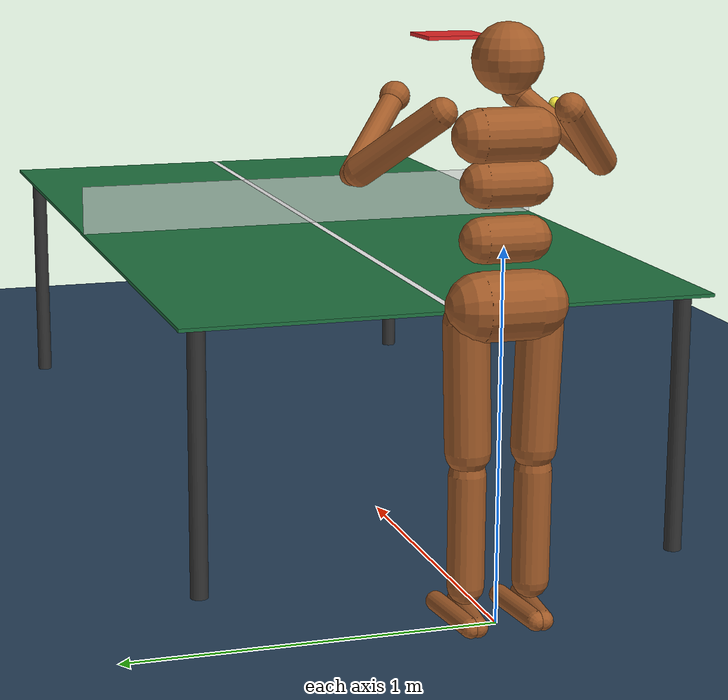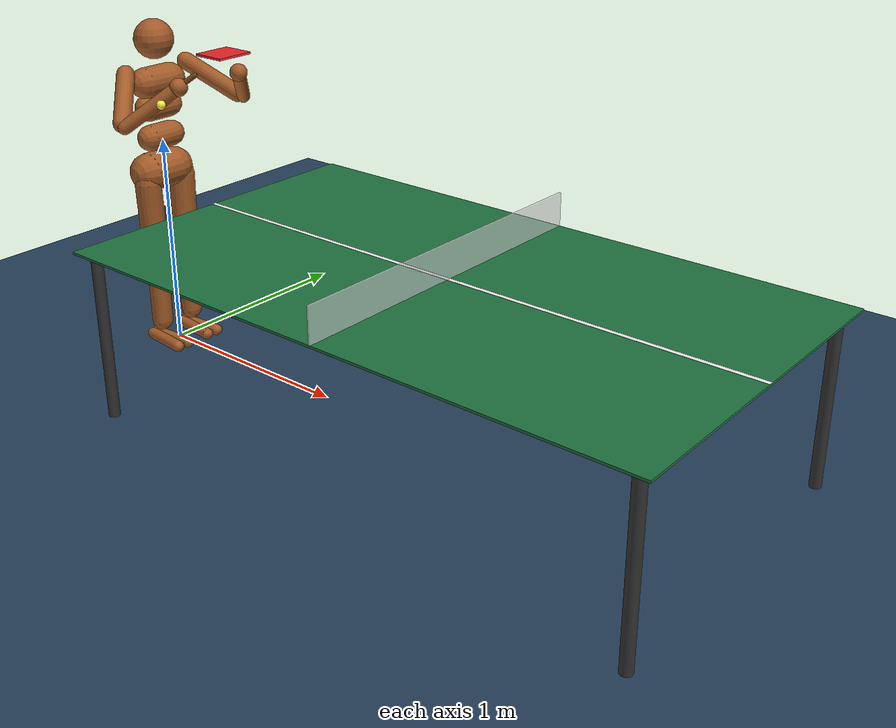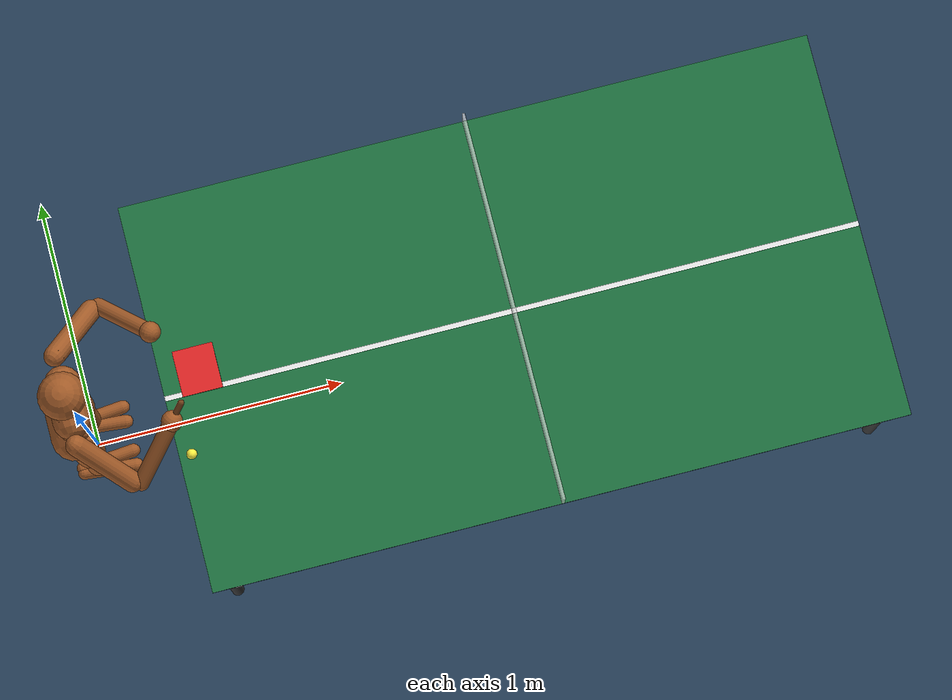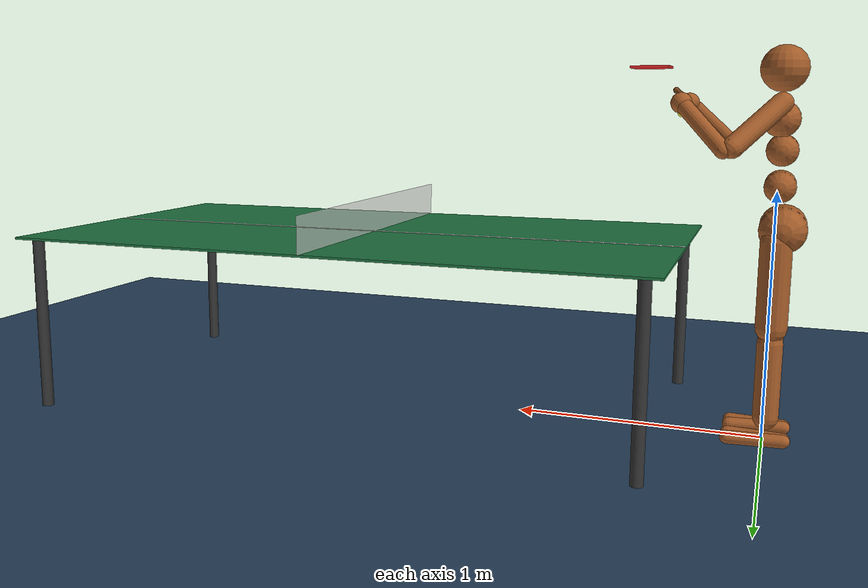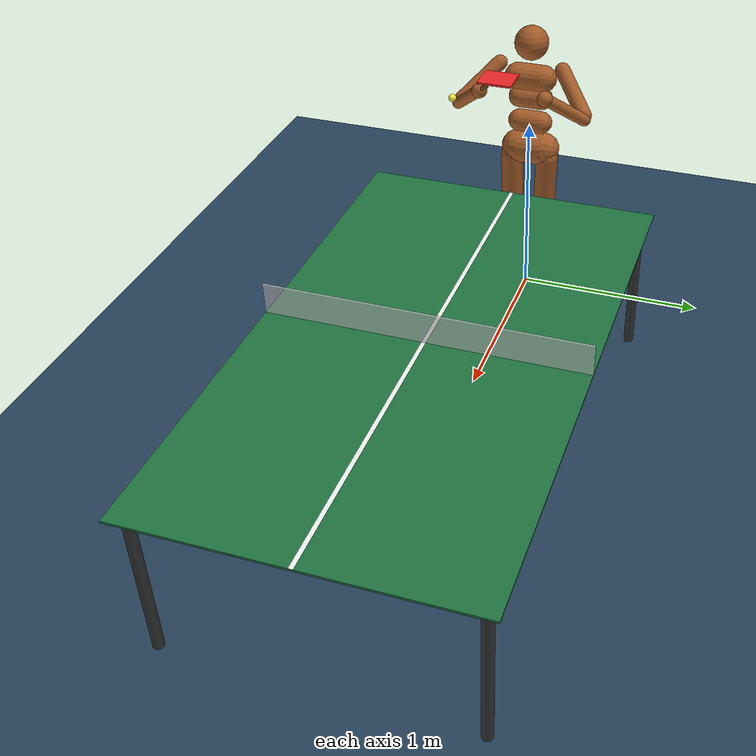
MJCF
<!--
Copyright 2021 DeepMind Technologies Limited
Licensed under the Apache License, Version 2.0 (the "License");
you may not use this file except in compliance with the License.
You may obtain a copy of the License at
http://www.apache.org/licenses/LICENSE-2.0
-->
<mujoco model="HumanoidTT">
  <option timestep="0.005"/>

  <visual>
    <map force="0.1" zfar="30"/>
    <rgba haze="0.15 0.25 0.35 1"/>
    <global offwidth="2560" offheight="1440" elevation="-20" azimuth="120"/>
  </visual>

  <statistic center="0 0 0.7"/>

  <asset>
    <texture type="skybox" builtin="gradient" rgb1=".3 .5 .7" rgb2="0 0 0" width="32" height="512"/>
    <texture name="body" type="cube" builtin="flat" mark="cross" width="128" height="128" rgb1="0.8 0.6 0.4" rgb2="0.8 0.6 0.4" markrgb="1 1 1"/>
    <material name="body" texture="body" texuniform="true" rgba="0.8 0.6 .4 1"/>
    <texture name="grid" type="2d" builtin="checker" width="512" height="512" rgb1=".1 .2 .3" rgb2=".2 .3 .4"/>
    <material name="grid" texture="grid" texrepeat="1 1" texuniform="true" reflectance=".2"/>
  </asset>

  <default>
    <motor ctrlrange="-1 1" ctrllimited="true"/>
    <default class="body">
      <geom type="capsule" condim="1" friction=".7" solimp=".9 .99 .003" solref=".015 1" material="body" group="1"/>
      <default class="thigh">
        <geom size=".06"/>
      </default>
      <default class="shin">
        <geom fromto="0 0 0 0 0 -.3"  size=".049"/>
      </default>
      <default class="foot">
        <geom size=".027"/>
        <default class="foot1">
          <geom fromto="-.07 -.01 0 .14 -.03 0"/>
        </default>
        <default class="foot2">
          <geom fromto="-.07 .01 0 .14  .03 0"/>
        </default>
      </default>
      <default class="arm_upper">
        <geom size=".04"/>
      </default>
      <default class="arm_lower">
        <geom size=".031"/>
      </default>
      <default class="hand">
        <geom type="sphere" size=".04"/>
      </default>
      <joint type="hinge" damping=".2" stiffness="1" armature=".01" limited="true" solimplimit="0 .99 .01"/>
      <default class="joint_big">
        <joint damping="5" stiffness="10"/>
        <default class="hip_x">
          <joint range="-30 10"/>
        </default>
        <default class="hip_z">
          <joint range="-60 35"/>
        </default>
        <default class="hip_y">
          <joint axis="0 1 0" range="-150 20"/>
        </default>
        <default class="joint_big_stiff">
          <joint stiffness="20"/>
        </default>
      </default>
      <default class="knee">
        <joint pos="0 0 .02" axis="0 -1 0" range="-160 2"/>
      </default>
      <default class="ankle">
        <joint range="-50 50"/>
        <default class="ankle_y">
          <joint pos="0 0 .08" axis="0 1 0" stiffness="6"/>
        </default>
        <default class="ankle_x">
          <joint pos="0 0 .04" stiffness="3"/>
        </default>
      </default>
      <default class="shoulder">
        <joint range="-85 60"/>
      </default>
      <default class="elbow">
        <joint range="-100 50" stiffness="0"/>
      </default>
    </default>
  </default>

  <worldbody>
    <geom name="floor" size="0 0 .05" type="plane" material="grid" condim="3"/>
    <light name="spotlight" mode="targetbodycom" target="torso" diffuse=".8 .8 .8" specular="0.3 0.3 0.3" pos="0 -6 4" cutoff="30"/>
    <light name="top" pos="0 0 2" mode="trackcom"/>

    <body name="torso" pos="0 0 1.282" childclass="body">
      <camera name="back" pos="-3 0 1" xyaxes="0 -1 0 1 0 2" mode="trackcom"/>
      <camera name="side" pos="0 -3 1" xyaxes="1 0 0 0 1 2" mode="trackcom"/>
      <freejoint name="root"/>
      <geom name="torso" fromto="0 -.07 0 0 .07 0" size=".07"/>
      <geom name="waist_upper" fromto="-.01 -.06 -.12 -.01 .06 -.12" size=".06"/>
      <body name="head" pos="0 0 .19">
        <geom name="head" type="sphere" size=".09"/>
        <camera name="egocentric" pos=".09 0 0" xyaxes="0 -1 0 .1 0 1" fovy="80"/>
      </body>
      <body name="waist_lower" pos="-.01 0 -.26">
        <geom name="waist_lower" fromto="0 -.06 0 0 .06 0" size=".06"/>
        <joint name="abdomen_z" pos="0 0 .065" axis="0 0 1" range="-45 45" class="joint_big_stiff"/>
        <joint name="abdomen_y" pos="0 0 .065" axis="0 1 0" range="-75 30" class="joint_big"/>
        <body name="pelvis" pos="0 0 -.165">
          <joint name="abdomen_x" pos="0 0 .1" axis="1 0 0" range="-35 35" class="joint_big"/>
          <geom name="butt" fromto="-.02 -.07 0 -.02 .07 0" size=".09"/>
          <body name="thigh_right" pos="0 -.1 -.04">
            <joint name="hip_x_right" axis="1 0 0" class="hip_x"/>
            <joint name="hip_z_right" axis="0 0 1" class="hip_z"/>
            <joint name="hip_y_right" class="hip_y"/>
            <geom name="thigh_right" fromto="0 0 0 0 .01 -.34" class="thigh"/>
            <body name="shin_right" pos="0 .01 -.4">
              <joint name="knee_right" class="knee"/>
              <geom name="shin_right" class="shin"/>
              <body name="foot_right" pos="0 0 -.39">
                <joint name="ankle_y_right" class="ankle_y"/>
                <joint name="ankle_x_right" class="ankle_x" axis="1 0 .5"/>
                <geom name="foot1_right" class="foot1"/>
                <geom name="foot2_right" class="foot2"/>
              </body>
            </body>
          </body>
          <body name="thigh_left" pos="0 .1 -.04">
            <joint name="hip_x_left" axis="-1 0 0" class="hip_x"/>
            <joint name="hip_z_left" axis="0 0 -1" class="hip_z"/>
            <joint name="hip_y_left" class="hip_y"/>
            <geom name="thigh_left" fromto="0 0 0 0 -.01 -.34" class="thigh"/>
            <body name="shin_left" pos="0 -.01 -.4">
              <joint name="knee_left" class="knee"/>
              <geom name="shin_left" fromto="0 0 0 0 0 -.3" class="shin"/>
              <body name="foot_left" pos="0 0 -.39">
                <joint name="ankle_y_left" class="ankle_y"/>
                <joint name="ankle_x_left" class="ankle_x" axis="-1 0 -.5"/>
                <geom name="foot1_left" class="foot1"/>
                <geom name="foot2_left" class="foot2"/>
              </body>
            </body>
          </body>
        </body>
      </body>
      <body name="upper_arm_right" pos="0 -.17 .06">
        <joint name="shoulder1_right" axis="2 1 1"  class="shoulder"/>
        <joint name="shoulder2_right" axis="0 -1 1" class="shoulder"/>
        <geom name="upper_arm_right" fromto="0 0 0 .16 -.16 -.16" class="arm_upper"/>
        <body name="lower_arm_right" pos=".18 -.18 -.18">
          <joint name="elbow_right" axis="0 -1 1" class="elbow"/>
          <geom name="lower_arm_right" fromto=".01 .01 .01 .17 .17 .17" class="arm_lower"/>
          <body name="hand_right" pos=".18 .18 .18">
            <geom name="hand_right" zaxis="1 1 1" class="hand"/>
            <!-- Table-tennis paddle rigidly attached to the right hand. -->
            <body name="paddle" pos="0 0 0">
              <geom name="paddle_handle" type="capsule"
                    fromto="0 0 0  0.05 0.05 0.05" size="0.012"
                    rgba="0.45 0.25 0.10 1"
                    friction="1.0 0.005 0.0001" condim="3"/>
              <geom name="paddle_blade" type="box"
                    pos="0.14 0.14 0.14"
                    size="0.085 0.005 0.075"
                    quat="0.5 0.5 0.5 0.5"
                    rgba="0.90 0.15 0.15 1"
                    friction="2.0 0.05 0.0001" condim="6"
                    solref="0.005 0.30"/>
            </body>
          </body>
        </body>
      </body>
      <body name="upper_arm_left" pos="0 .17 .06">
        <joint name="shoulder1_left" axis="-2 1 -1" class="shoulder"/>
        <joint name="shoulder2_left" axis="0 -1 -1"  class="shoulder"/>
        <geom name="upper_arm_left" fromto="0 0 0 .16 .16 -.16" class="arm_upper"/>
        <body name="lower_arm_left" pos=".18 .18 -.18">
          <joint name="elbow_left" axis="0 -1 -1" class="elbow"/>
          <geom name="lower_arm_left" fromto=".01 -.01 .01 .17 -.17 .17" class="arm_lower"/>
          <body name="hand_left" pos=".18 -.18 .18">
            <geom name="hand_left" zaxis="1 -1 1" class="hand"/>
          </body>
        </body>
      </body>
    </body>

    <!-- ── Table-tennis table (standard ITTF dimensions) ─────────────── -->
    <body name="tt_table" pos="1.7 0 0">
      <geom name="table_top" type="box"
            pos="0 0 0.76" size="1.37 0.7625 0.005"
            rgba="0.12 0.45 0.25 1"
            friction="0.4 0.005 0.0001" condim="3"
            solref="0.005 0.45"/>
      <geom name="table_centerline" type="box"
            pos="0 0 0.7651" size="1.37 0.01 0.0005"
            rgba="0.95 0.95 0.95 1" contype="0" conaffinity="0"/>
      <geom name="table_net" type="box"
            pos="0 0 0.84" size="0.005 0.7625 0.0762"
            rgba="0.9 0.9 0.9 0.65"
            friction="0.4 0.005 0.0001" condim="3"/>
      <geom name="leg_nl" type="cylinder" pos="-1.3 -0.7 0.38"
            size="0.025 0.38" rgba="0.2 0.2 0.2 1" contype="0" conaffinity="0"/>
      <geom name="leg_nr" type="cylinder" pos="-1.3  0.7 0.38"
            size="0.025 0.38" rgba="0.2 0.2 0.2 1" contype="0" conaffinity="0"/>
      <geom name="leg_fl" type="cylinder" pos=" 1.3 -0.7 0.38"
            size="0.025 0.38" rgba="0.2 0.2 0.2 1" contype="0" conaffinity="0"/>
      <geom name="leg_fr" type="cylinder" pos=" 1.3  0.7 0.38"
            size="0.025 0.38" rgba="0.2 0.2 0.2 1" contype="0" conaffinity="0"/>
    </body>

    <!-- ── Ball (40 mm, 2.7 g, realistic bounce) ─────────────────────── -->
    <body name="ball" pos="0.4 -0.3 1.30">
      <freejoint name="ball_root"/>
      <geom name="ball" type="sphere" size="0.02"
            rgba="1.0 0.95 0.25 1"
            mass="0.0027"
            friction="0.4 0.05 0.0001" condim="6"
            solref="0.005 0.45"/>
    </body>

  </worldbody>

  <contact>
    <exclude body1="waist_lower" body2="thigh_right"/>
    <exclude body1="waist_lower" body2="thigh_left"/>
    <exclude body1="tt_table" body2="torso"/>
    <exclude body1="tt_table" body2="waist_lower"/>
    <exclude body1="tt_table" body2="pelvis"/>
    <exclude body1="tt_table" body2="thigh_right"/>
    <exclude body1="tt_table" body2="thigh_left"/>
    <exclude body1="tt_table" body2="shin_right"/>
    <exclude body1="tt_table" body2="shin_left"/>
    <exclude body1="tt_table" body2="foot_right"/>
    <exclude body1="tt_table" body2="foot_left"/>
  </contact>

  <tendon>
    <fixed name="hamstring_right" limited="true" range="-0.3 2">
      <joint joint="hip_y_right" coef=".5"/>
      <joint joint="knee_right" coef="-.5"/>
    </fixed>
    <fixed name="hamstring_left" limited="true" range="-0.3 2">
      <joint joint="hip_y_left" coef=".5"/>
      <joint joint="knee_left" coef="-.5"/>
    </fixed>
  </tendon>

  <actuator>
    <motor name="abdomen_z"       gear="40"  joint="abdomen_z"/>
    <motor name="abdomen_y"       gear="40"  joint="abdomen_y"/>
    <motor name="abdomen_x"       gear="40"  joint="abdomen_x"/>
    <motor name="hip_x_right"     gear="40"  joint="hip_x_right"/>
    <motor name="hip_z_right"     gear="40"  joint="hip_z_right"/>
    <motor name="hip_y_right"     gear="120" joint="hip_y_right"/>
    <motor name="knee_right"      gear="80"  joint="knee_right"/>
    <motor name="ankle_y_right"   gear="20"  joint="ankle_y_right"/>
    <motor name="ankle_x_right"   gear="20"  joint="ankle_x_right"/>
    <motor name="hip_x_left"      gear="40"  joint="hip_x_left"/>
    <motor name="hip_z_left"      gear="40"  joint="hip_z_left"/>
    <motor name="hip_y_left"      gear="120" joint="hip_y_left"/>
    <motor name="knee_left"       gear="80"  joint="knee_left"/>
    <motor name="ankle_y_left"    gear="20"  joint="ankle_y_left"/>
    <motor name="ankle_x_left"    gear="20"  joint="ankle_x_left"/>
    <motor name="shoulder1_right" gear="20"  joint="shoulder1_right"/>
    <motor name="shoulder2_right" gear="20"  joint="shoulder2_right"/>
    <motor name="elbow_right"     gear="40"  joint="elbow_right"/>
    <motor name="shoulder1_left"  gear="20"  joint="shoulder1_left"/>
    <motor name="shoulder2_left"  gear="20"  joint="shoulder2_left"/>
    <motor name="elbow_left"      gear="40"  joint="elbow_left"/>
  </actuator>

</mujoco>
